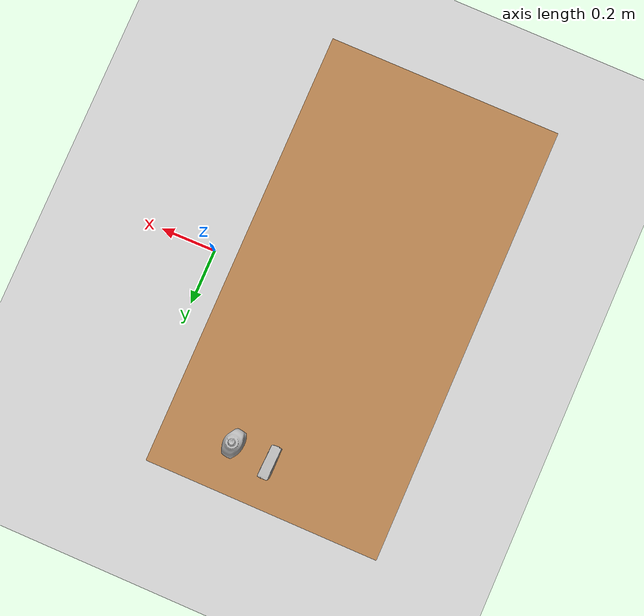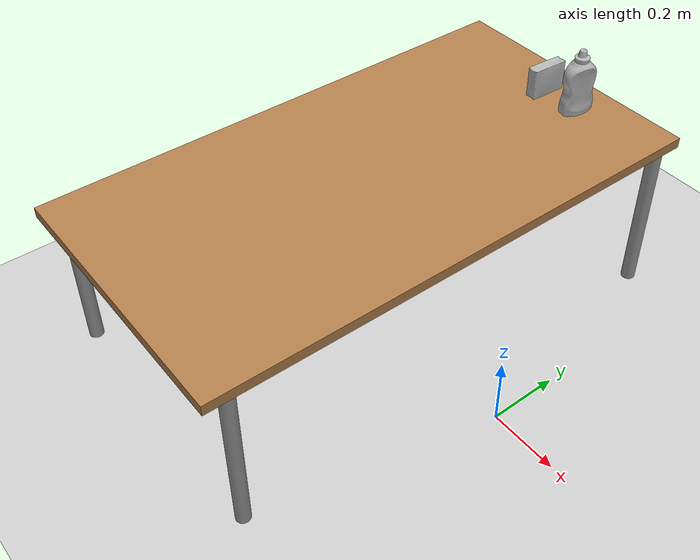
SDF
<sdf version="1.7">
 <world name="default">
  <include><uri>model://sun</uri></include>
  <light name="user_point_light_0" type="point">
   <pose>0.197302 -0.215077 1 0 -0 0</pose>
   <diffuse>0.5 0.5 0.5 1</diffuse>
   <specular>0.1 0.1 0.1 1</specular>
   <attenuation>
    <range>20</range>
    <constant>0.5</constant>
    <linear>0.01</linear>
    <quadratic>0.001</quadratic>
   </attenuation>
   <cast_shadows>0</cast_shadows>
   <direction>0 0 -1</direction>
  </light>
  <include><uri>model://ground_plane</uri></include>
  <include><uri>model://table</uri><pose>-0.530772 0 0 0 0 -1.57</pose></include>
  <include>
   <uri>model://mustard_bottle</uri>
   <pose>-0.4 0.6 0.51 0 0 1.8</pose>
   <plugin name="pose_mover" filename="libicub-gazebo-grasping-sandbox-model-mover.so"/>
  </include>
  <include>
   <uri>model://pudding_box</uri>
   <pose>-0.5 0.6 0.5 0 0 1.57</pose>
   <plugin name="pose_mover" filename="libicub-gazebo-grasping-sandbox-model-mover.so"/>
  </include>
 </world>
</sdf>

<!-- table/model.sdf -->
<sdf version="1.7">
  <model name="table">
    <static>true</static>
    <link name="table_root_link">
      <collision name="table_surface_collision">
	<pose>0 0 0.465 0 0 0</pose>
	<geometry>
          <box>
            <size>1.5 0.8 0.03</size>
          </box>
	</geometry>
	<surface>
          <friction>
            <ode>
              <mu>0.1</mu>
              <mu2>0.1</mu2>
            </ode>
          </friction>
	</surface>
      </collision>
      <visual name="table_surface_visual">
	<pose>0 0 0.465 0 0 0</pose>
	<geometry>
          <box>
            <size>1.5 0.8 0.03</size>
          </box>
	</geometry>
	<material>
          <script>
            <uri>file://media/materials/scripts/gazebo.material</uri>
            <name>Gazebo/Wood</name>
          </script>
	</material>
      </visual>
      <collision name="front_left_leg">
        <pose>0.68 0.38 0.225 0 0 0</pose>
        <geometry>
          <cylinder>
            <radius>0.02</radius>
            <length>0.45</length>
          </cylinder>
        </geometry>
      </collision>
      <visual name="front_left_leg">
        <pose>0.68 0.38 0.225 0 0 0</pose>
        <geometry>
          <cylinder>
            <radius>0.02</radius>
            <length>0.45</length>
          </cylinder>
        </geometry>
        <material>
          <script>
            <uri>file://media/materials/scripts/gazebo.material</uri>
            <name>Gazebo/Grey</name>
          </script>
        </material>
      </visual>
      <collision name="front_right_leg">
        <pose>0.68 -0.38 0.225 0 0 0</pose>
        <geometry>
          <cylinder>
            <radius>0.02</radius>
            <length>0.45</length>
          </cylinder>
        </geometry>
      </collision>
      <visual name="front_right_leg">
        <pose>0.68 -0.38 0.225 0 0 0</pose>
        <geometry>
          <cylinder>
            <radius>0.02</radius>
            <length>0.45</length>
          </cylinder>
        </geometry>
        <material>
          <script>
            <uri>file://media/materials/scripts/gazebo.material</uri>
            <name>Gazebo/Grey</name>
          </script>
        </material>
      </visual>
      <collision name="back_right_leg">
        <pose>-0.68 -0.38 0.225 0 0 0</pose>
        <geometry>
          <cylinder>
            <radius>0.02</radius>
            <length>0.45</length>
          </cylinder>
        </geometry>
      </collision>
      <visual name="back_right_leg">
        <pose>-0.68 -0.38 0.225 0 0 0</pose>
        <geometry>
          <cylinder>
            <radius>0.02</radius>
            <length>0.45</length>
          </cylinder>
        </geometry>
        <material>
          <script>
            <uri>file://media/materials/scripts/gazebo.material</uri>
            <name>Gazebo/Grey</name>
          </script>
        </material>
      </visual>
      <collision name="back_left_leg">
        <pose>-0.68 0.38 0.225 0 0 0</pose>
        <geometry>
          <cylinder>
            <radius>0.02</radius>
            <length>0.45</length>
          </cylinder>
        </geometry>
      </collision>
      <visual name="back_left_leg">
        <pose>-0.68 0.38 0.225 0 0 0</pose>
        <geometry>
          <cylinder>
            <radius>0.02</radius>
            <length>0.45</length>
          </cylinder>
        </geometry>
        <material>
          <script>
            <uri>file://media/materials/scripts/gazebo.material</uri>
            <name>Gazebo/Grey</name>
          </script>
        </material>
      </visual>
    </link>
  </model>
</sdf>

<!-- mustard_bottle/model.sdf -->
<sdf version="1.7">

  <model name='mustard_bottle'>

    <link name='mustard_bottle_link'>

      <inertial>
        <!-- CoM evaluated using Meshlab assuming a homogeneous body-->
        <!-- expressed w.r.t. the origin of the mesh -->
        <pose>-0.015054 -0.023109 0.075042 0 0 0</pose>
        <mass>0.1</mass>
        <inertia>
          <!-- Obtained from Meshlab -->
          <ixx>0.00024306134790849675</ixx>
          <ixy>1.2579345702614378e-05</ixy>
          <ixz>-8.24954705882353e-07</ixz>
          <iyy>0.00026750229779411763</iyy>
          <iyz>-1.1690506209150325e-06</iyz>
          <izz>7.015540428104576e-05</izz>
        </inertia>
      </inertial>

      <collision name='mustard_bottle_collision'>
        <max_contacts>1</max_contacts>
        <geometry>
          <mesh>
            <uri>model://mustard_bottle/meshes/obj_000005_collision.dae</uri>
          </mesh>
        </geometry>
      </collision>

      <visual name='mustard_bottle_visual'>>
        <geometry>
          <mesh>
            <uri>model://mustard_bottle/meshes/obj_000005.dae</uri>
          </mesh>
        </geometry>
      </visual>

    </link>

  </model>

</sdf>

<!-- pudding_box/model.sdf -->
<sdf version="1.7">

  <model name='pudding_box'>

    <link name='pudding_box_link'>

      <inertial>
        <!-- CoM evaluated using Meshlab assuming a homogeneous body-->
        <!-- expressed w.r.t. the origin of the mesh -->
        <pose>0.0007319575846704796 0.00027316657131084697 0.04441599683860103 0 0 0</pose>
        <mass>0.1</mass>
        <inertia>
          <!-- Obtained from Meshlab -->
          <ixx>7.336252036635685e-05</ixx>
          <ixy>-1.890622701471698e-06</ixy>
          <ixz>-6.974562529560548e-07</ixz>
          <iyy>0.0001612440611005154</iyy>
          <iyz>6.258865744934437e-07</iyz>
          <izz>0.00010886137507079624</izz>
        </inertia>
      </inertial>

      <collision name='pudding_box_collision'>
        <max_contacts>1</max_contacts>
        <geometry>
          <mesh>
            <uri>model://pudding_box/meshes/obj_000007_collision.dae</uri>
          </mesh>
        </geometry>
      </collision>

      <visual name='pudding_box_visual'>
        <geometry>
          <mesh>
            <uri>model://pudding_box/meshes/obj_000007.dae</uri>
          </mesh>
        </geometry>
      </visual>

    </link>

  </model>

</sdf>
